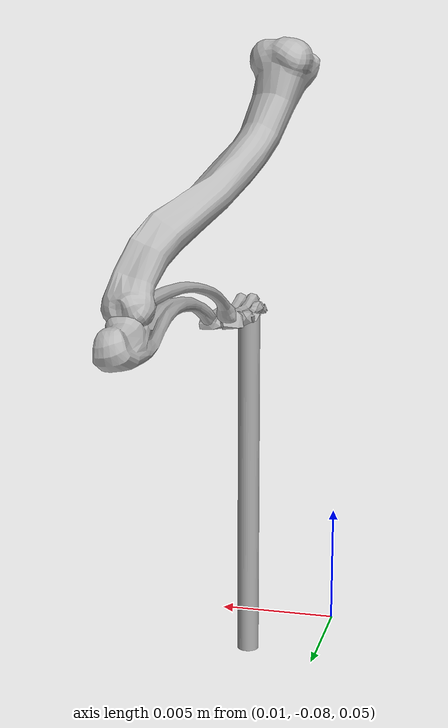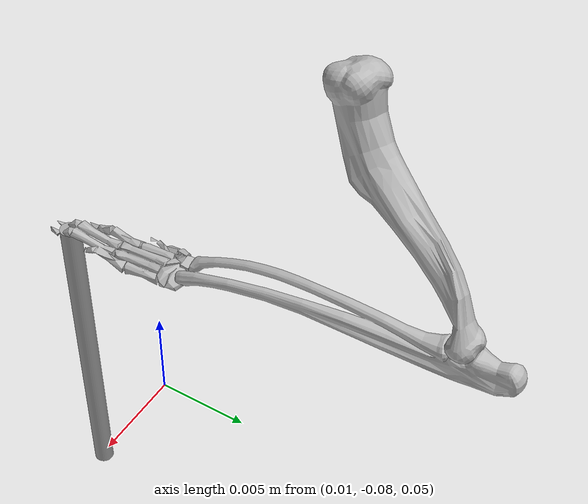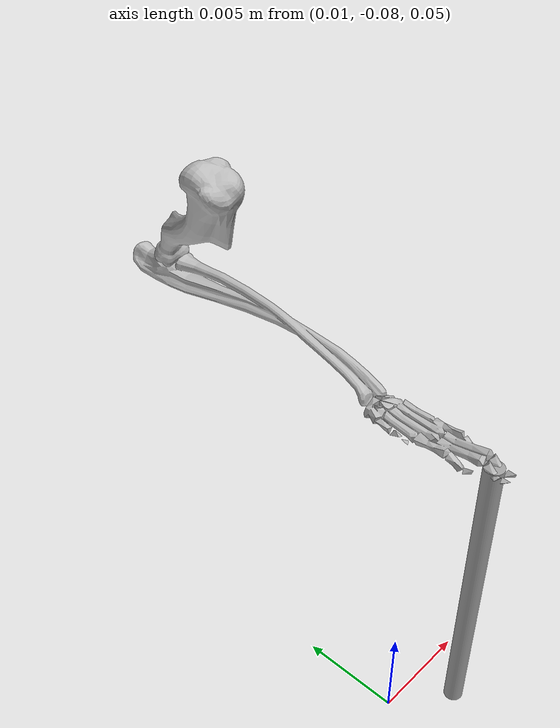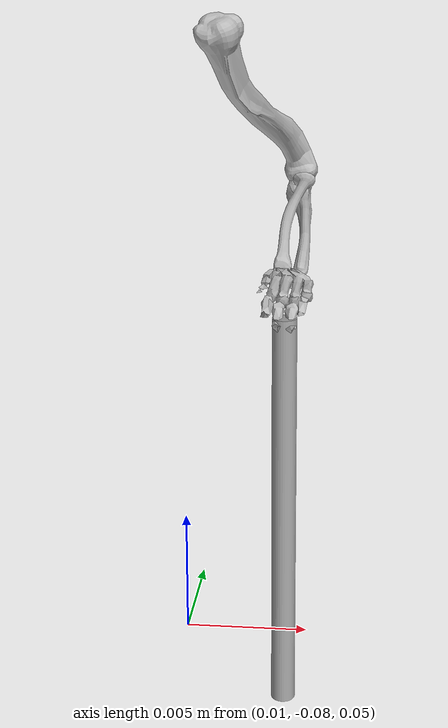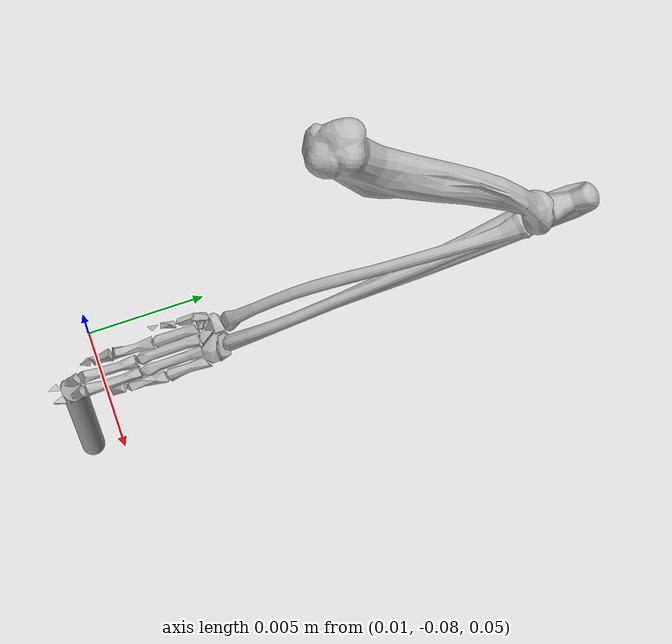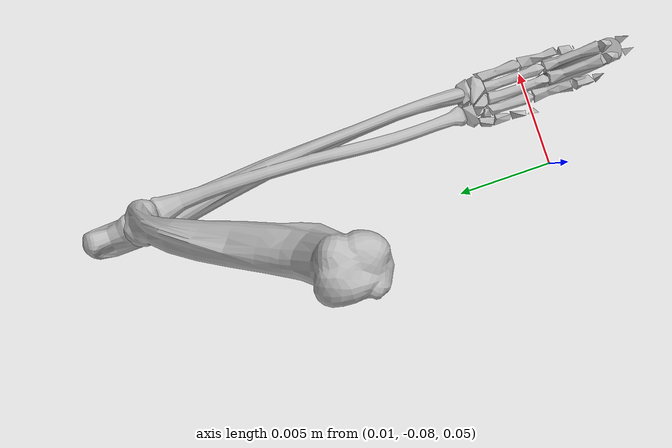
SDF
<?xml version="1.0" ?>
<sdf version="1.6">
  <model name="robobrain_mouse">
    <pose>0.0 0.0 0.05 0.0 0.0 0.0</pose>
    <link name="humerus">
      <gravity>true</gravity>
      <self_collide>true</self_collide>
      <pose>0.010209999978542328 -0.06925000250339508 0.02394000068306923 1.4660766124725342 0.7330383062362671 1.0995573997497559</pose>
      <inertial>
        <mass>5.199999941396527e-05</mass>
        <inertia>
          <ixx>1.2712436046058428e-06</ixx>
          <ixy>0.0</ixy>
          <ixz>0.0</ixz>
          <iyy>1.3205351933720522e-05</iyy>
          <iyz>0.0</iyz>
          <izz>1.3603206753032282e-05</izz>
        </inertia>
        <pose>0.005032085347920656 -0.0003204972017556429 -2.959545236080885e-05 1.5279800891221385e-07 2.12679012179251e-07 -2.3438094842731516e-07</pose>
      </inertial>
      <visual name="VIS_humerus">
        <pose>-7.799826562404633e-08 9.639188647270203e-08 -7.2177499532699585e-09 3.395447123466511e-08 2.376813057480831e-07 -2.813370656440384e-07</pose>
        <geometry>
          <mesh>
            <uri>model://robobrain_mouse_with_joystick/meshes/visual/VIS_humerus.dae</uri>
            <scale>0.0014999998966231942 0.0014999998966231942 0.001500000013038516</scale>
          </mesh>
        </geometry>
      </visual>
    </link>
    <link name="radius">
      <gravity>true</gravity>
      <self_collide>true</self_collide>
      <pose>0.013779921554657421 -0.062260028455426164 0.016869935473746954 -0.11405567124394644 0.19327865660306376 -1.562355056460017</pose>
      <inertial>
        <mass>2.700000004551839e-05</mass>
        <inertia>
          <ixx>1.0198847348874551e-06</ixx>
          <ixy>0.0</ixy>
          <ixz>0.0</ixz>
          <iyy>2.106719693983905e-05</iyy>
          <iyz>0.0</iyz>
          <izz>2.0488319933065213e-05</izz>
        </inertia>
        <pose>0.005458437371999025 -3.2272073440253735e-05 -0.0004281512228772044 1.956045849738075e-07 -8.471310053437264e-08 -3.6864162211713847e-07</pose>
      </inertial>
      <visual name="VIS_radius">
        <pose>-5.566107574850321e-09 -2.396991476416588e-07 1.280568540096283e-09 2.5465857333983877e-07 1.8189892259101725e-08 -3.456079582520033e-07</pose>
        <geometry>
          <mesh>
            <uri>model://robobrain_mouse_with_joystick/meshes/visual/VIS_radius.dae</uri>
            <scale>0.001500000013038516 0.0014999998966231942 0.001500000013038516</scale>
          </mesh>
        </geometry>
      </visual>
    </link>
    <link name="foot">
      <gravity>true</gravity>
      <self_collide>true</self_collide>
      <pose>0.013889859448839964 -0.07476000989973458 0.014649827213453169 1.51432569301283 0.0737954186306416 -1.531185649031887</pose>
      <inertial>
        <mass>9.000000318337698e-06</mass>
        <inertia>
          <ixx>5.463311936182436e-07</ixx>
          <ixy>0.0</ixy>
          <ixz>0.0</ixz>
          <iyy>4.960554633726133e-06</iyy>
          <iyz>0.0</iyz>
          <izz>4.59005605080165e-06</izz>
        </inertia>
        <pose>0.0037878118455410004 -0.0002672626869753003 0.00010534370085224509 3.6824312132921477e-07 4.257350383340963e-08 2.708359261305304e-07</pose>
      </inertial>
      <visual name="VIS_foot">
        <pose>-1.3853423297405243e-08 1.2060627341270447e-07 6.693881005048752e-09 2.834592578437878e-07 1.785641785545522e-07 3.4090902545358404e-07</pose>
        <geometry>
          <mesh>
            <uri>model://robobrain_mouse_with_joystick/meshes/visual/VIS_foot.dae</uri>
            <scale>0.0014999998966231942 0.0014999998966231942 0.0014999998966231942</scale>
          </mesh>
        </geometry>
      </visual>
    </link>
    <link name="joystick">
      <gravity>true</gravity>
      <self_collide>true</self_collide>
      <pose>0.014129824501894027 -0.0812200069537808 0.013869792087258066 1.5739769575390745 -0.004021978518776045 0.008645440932119337</pose>
      <inertial>
        <mass>0.019999999552965164</mass>
        <inertia>
          <ixx>2.2342641386785544e-05</ixx>
          <ixy>0.0</ixy>
          <ixz>0.0</ixz>
          <iyy>2.2342641386785544e-05</iyy>
          <iyz>0.0</iyz>
          <izz>1.5624367222244473e-07</izz>
        </inertia>
        <pose>-2.847359428415075e-05 -0.00808674469590187 2.7858290195581503e-05 -1.5739771127700806 -0.008658047765493393 -0.003994322847574949</pose>
      </inertial>
      <visual name="VIS_joystick">
        <pose>-2.8473026759456843e-05 -0.008088948205113411 2.785047036013566e-05 -1.573976993560791 -0.008658157661557198 -0.003994246479123831</pose>
        <geometry>
          <mesh>
            <uri>model://robobrain_mouse_with_joystick/meshes/visual/VIS_joystick.dae</uri>
            <scale>0.0004841131158173084 0.0004841131158173084 0.008172732777893543</scale>
          </mesh>
        </geometry>
      </visual>
    </link>

    <joint name="world_humerus" type="revolute">
      <parent>world</parent>
      <child>humerus</child>
      <axis>
        <xyz>0.0 0.0 1.0</xyz>
        <limit>
          <lower>-1.8</lower>
          <upper>0.8</upper>
        </limit>
        <dynamics>
          <damping>0.0001</damping>
          <friction>0.0</friction>
          <spring_reference>0.0</spring_reference>
          <spring_stiffness>0.0</spring_stiffness>
        </dynamics>
      </axis>
      <physics>
        <ode>
          <cfm_damping>false</cfm_damping>
          <implicit_spring_damper>false</implicit_spring_damper>
          <cfm>0.0</cfm>
          <erp>0.20000000298023224</erp>
        </ode>
      </physics>
    </joint>

    <joint name="humerus_radius" type="revolute">
      <parent>humerus</parent>
      <child>radius</child>
      <axis>
        <xyz>0.0 1.0 0.0</xyz>
        <dynamics>
          <damping>0.00001</damping>
          <friction>0.0</friction>
          <spring_reference>0.0</spring_reference>
          <spring_stiffness>0.0</spring_stiffness>
        </dynamics>
        <limit>
          <lower>-0.5</lower>
          <upper>1.0459999942334164</upper>
        </limit>
      </axis>
      <physics>
        <ode>
          <cfm_damping>false</cfm_damping>
          <implicit_spring_damper>false</implicit_spring_damper>
          <cfm>0.0</cfm>
          <erp>0.20000000298023224</erp>
        </ode>
      </physics>
    </joint>

    <joint name="radius_foot" type="revolute">
      <parent>radius</parent>
      <child>foot</child>
      <axis>
        <xyz>0.0 0.0 1.0</xyz>
        <dynamics>
          <damping>0.000001</damping>
          <friction>0.0</friction>
          <spring_reference>0.0</spring_reference>
          <spring_stiffness>0.0</spring_stiffness>
        </dynamics>
        <limit>
          <lower>-0.8721999709659732</lower>
          <upper>0.6000000070036828</upper>
        </limit>
      </axis>
      <physics>
        <ode>
          <cfm_damping>false</cfm_damping>
          <implicit_spring_damper>false</implicit_spring_damper>
          <cfm>0.0</cfm>
          <erp>0.20000000298023224</erp>
        </ode>
      </physics>
    </joint>

    <joint name="joystick_world" type="ball">
      <parent>world</parent>
      <child>joystick</child>
      <axis>
        <xyz>1.0 0.0 0.0</xyz>
        <dynamics>
          <damping>0.0</damping>
          <friction>0.0</friction>
          <spring_reference>0.0</spring_reference>
          <spring_stiffness>0.0</spring_stiffness>
        </dynamics>
      </axis>
      <physics>
        <ode>
          <cfm_damping>false</cfm_damping>
          <implicit_spring_damper>false</implicit_spring_damper>
          <cfm>0.0</cfm>
          <erp>0.20000000298023224</erp>
        </ode>
      </physics>
    </joint>

    <muscles>model://robobrain_mouse_with_joystick/muscles.osim</muscles>
    <plugin name="muscle_interface_plugin" filename="libgazebo_ros_muscle_interface.so"></plugin>

    <plugin filename="libgeneric_controller_plugin.so" name="baxter_controller">

        <controller joint_name="world_humerus">
            <type>position</type>
            <pid>0 0 0</pid>
        </controller>
        <controller joint_name="humerus_radius">
            <type>position</type>
            <pid>0 0 0</pid>
        </controller>
        <controller joint_name="radius_foot">
            <type>position</type>
            <pid>0 0 0</pid>
        </controller>
    </plugin>
  </model>
</sdf>
